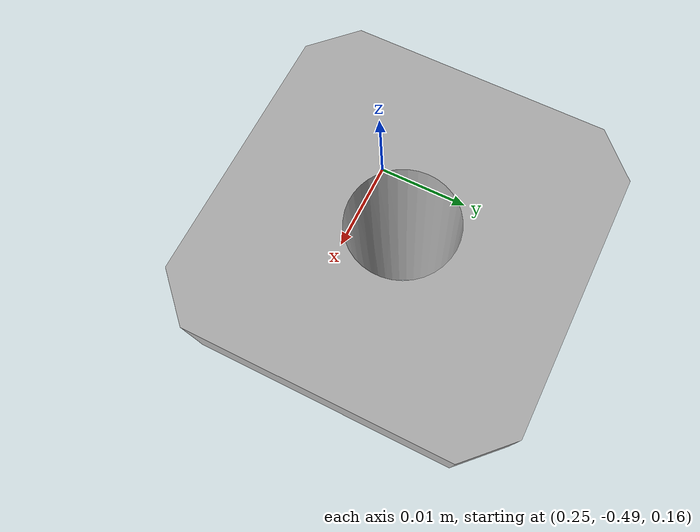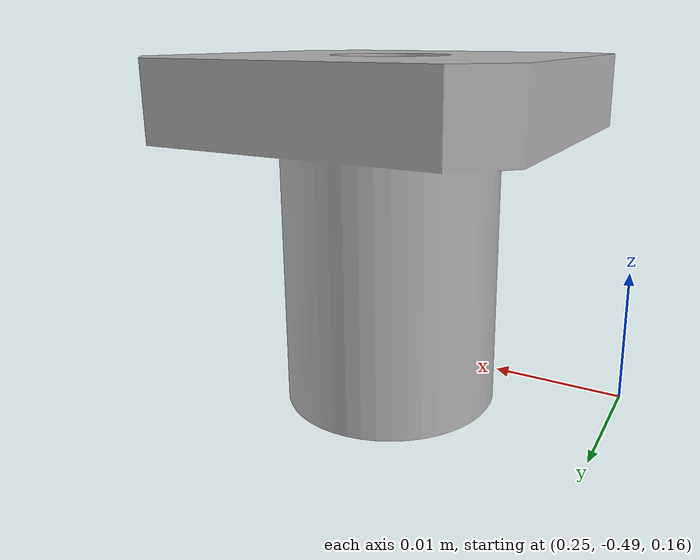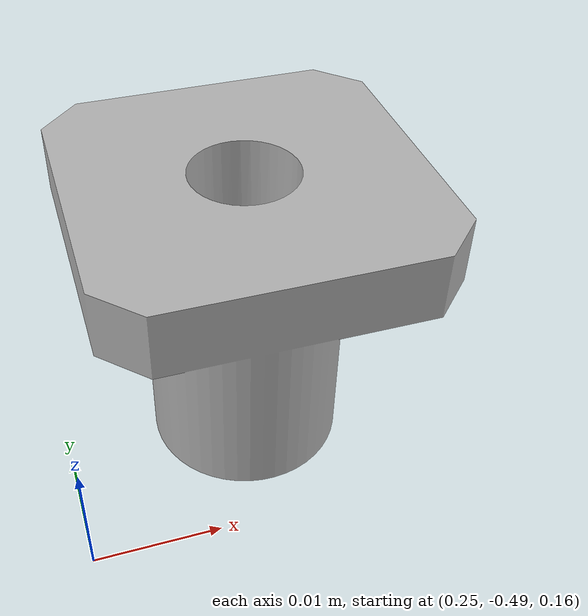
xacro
<?xml version="1.0" ?>
<robot name="honeycomb" xmlns:xacro="http://www.ros.org/wiki/xacro">

<xacro:include filename="$(find honeycomb_description)/urdf/materials.xacro" />
<xacro:include filename="$(find honeycomb_description)/urdf/honeycomb.trans" />
<xacro:include filename="$(find honeycomb_description)/urdf/honeycomb.gazebo" />
<link name="base_link">
  <inertial>
    <origin xyz="0.2647949989115639 -0.48028446395807 0.17768984266834312" rpy="0 0 0"/>
    <mass value="0.04071171372093253"/>
    <inertia ixx="4e-06" iyy="4e-06" izz="3e-06" ixy="-0.0" iyz="-0.0" ixz="-0.0"/>
  </inertial>
  <visual>
    <origin xyz="0 0 0" rpy="0 0 0"/>
    <geometry>
      <mesh filename="package://honeycomb_description/meshes/base_link.stl" scale="0.001 0.001 0.001"/>
    </geometry>
    <material name="silver"/>
  </visual>
  <collision>
    <origin xyz="0 0 0" rpy="0 0 0"/>
    <geometry>
      <mesh filename="package://honeycomb_description/meshes/base_link.stl" scale="0.001 0.001 0.001"/>
    </geometry>
  </collision>
</link>

</robot>

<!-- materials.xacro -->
<robot name="honeycomb" xmlns:xacro="http://www.ros.org/wiki/xacro" >

<material name="silver">
  <color rgba="0.700 0.700 0.700 1.000"/>
</material>

</robot>

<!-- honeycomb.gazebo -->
<robot name="honeycomb" xmlns:xacro="http://www.ros.org/wiki/xacro" >

<xacro:property name="body_color" value="Gazebo/Silver" />

<gazebo>
  <plugin name="control" filename="libgazebo_ros_control.so"/>
</gazebo>
<gazebo reference="base_link">
  <material>${body_color}</material>
  <mu1>0.2</mu1>
  <mu2>0.2</mu2>
  <selfCollide>true</selfCollide>
  <gravity>true</gravity>
</gazebo>

</robot>
